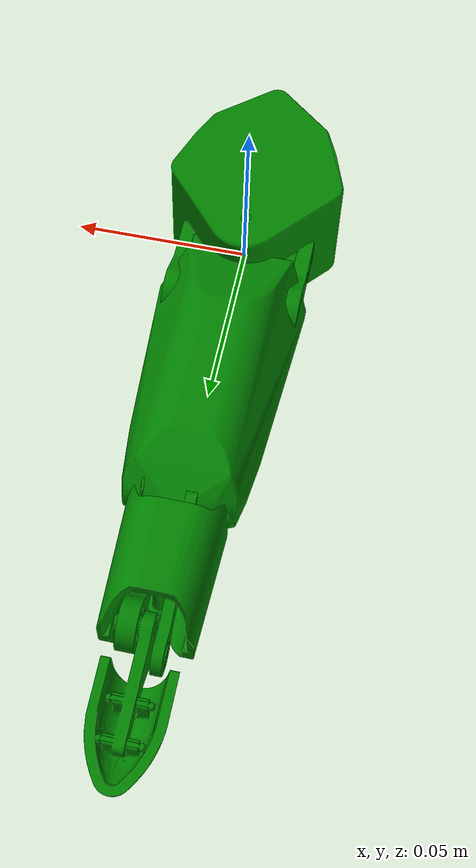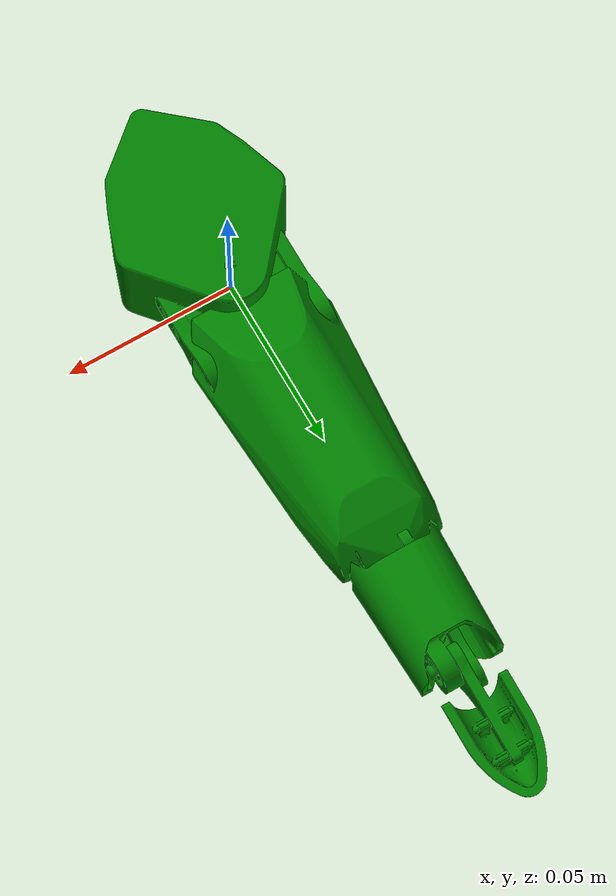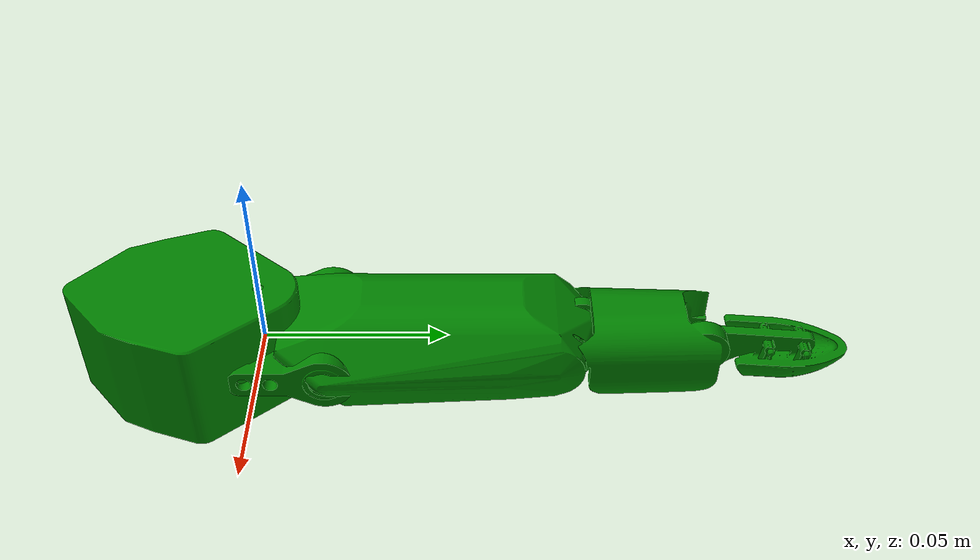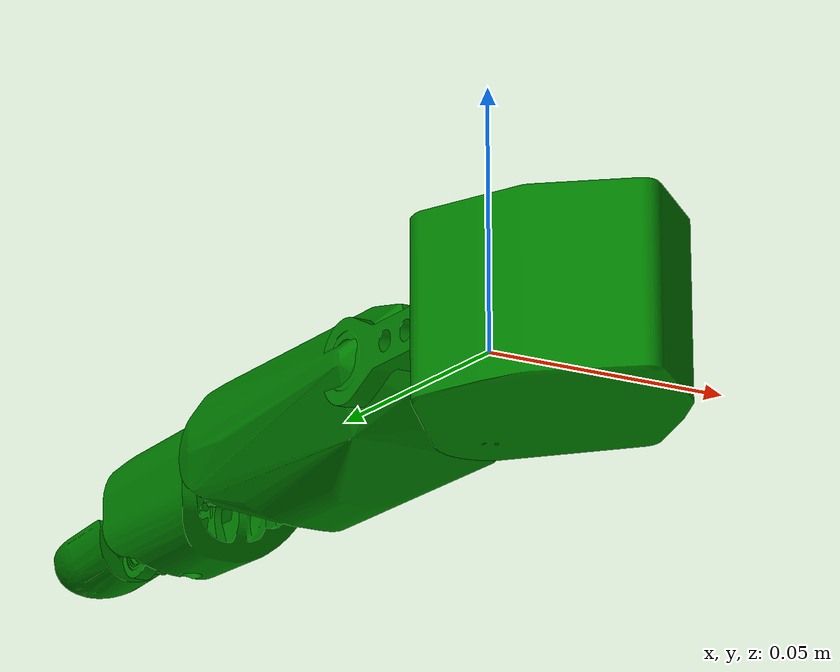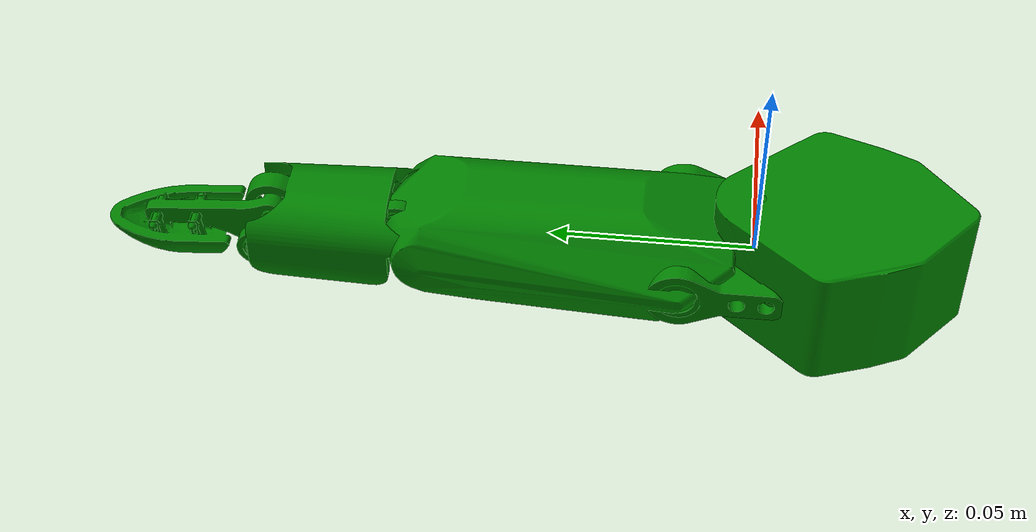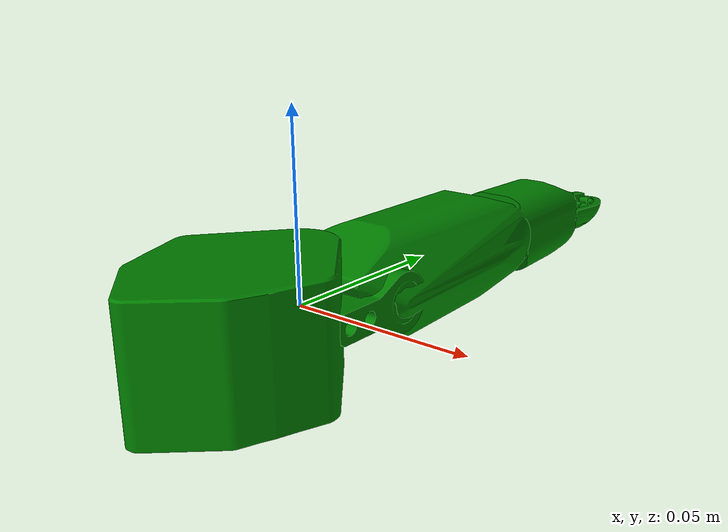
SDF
<?xml version="1.0"?>
<sdf version="1.9">
  <model name="finger">

  <!-- Generated by blender_export_sdf.py from /home/michael-jenz/rds_ws/src/robotic-finger/blender_files/rds_finger2_4bar.blend -->
  <!-- Four-bar linkage: proximal_phalanx + middle_phalanx1/2 + distal_phalanx -->
  <!-- Loop-closing joint: dip_flex2 (middle_phalanx2 → distal_phalanx) -->

    <drake:collision_filter_group name="finger_links">
      <drake:member>base_link</drake:member>
      <drake:member>mcp_link</drake:member>
      <drake:member>proximal_phalanx</drake:member>
      <drake:member>middle_phalanx1</drake:member>
      <drake:member>middle_phalanx2</drake:member>
      <drake:member>distal_phalanx</drake:member>
      <drake:ignored_collision_filter_group>finger_links</drake:ignored_collision_filter_group>
    </drake:collision_filter_group>
    <!-- ═══════════════ LINKS ═══════════════ -->

    <!-- Finger base -->
    <link name="base_link">
      <pose>0.0 0.0 0.0 0 0 0</pose>
      <visual name="visual">
        <geometry>
          <mesh>
            <uri>package://finger_description/meshes/sdf/visual/base_link.obj</uri>
          </mesh>
        </geometry>
          <material>
            <ambient>0.0 0.5 0.0 1.0</ambient>
            <diffuse>0.0 0.5 0.0 1.0</diffuse>
            <specular>0.1 0.1 0.1 1.0</specular>
            <emissive>0.0 0.0 0.0 1.0</emissive>
          </material>
      </visual>
      <collision name="collision">
        <geometry>
          <mesh>
            <uri>package://finger_description/meshes/sdf/collision/col_base_link.obj</uri>
          </mesh>
        </geometry>
      </collision>
      <inertial>
        <pose>0 0 0 0 0 0</pose>
        <mass>0.07682151183429052</mass>
        <inertia><ixx>3.15903e-05</ixx><ixy>0</ixy><ixz>0</ixz><iyy>1.25823e-05</iyy><iyz>0</iyz><izz>3.14006e-05</izz></inertia>
      </inertial>
    </link>

    <!-- Space between MCP splay and flexion -->
    <link name="mcp_link">
      <pose>0.0 0.0 0.0 0 0 0</pose>
      <visual name="visual">
        <geometry>
          <mesh>
            <uri>package://finger_description/meshes/sdf/visual/mcp_link.obj</uri>
          </mesh>
        </geometry>
        <material>
          <ambient>0.0 0.5 0.0 1.0</ambient>
          <diffuse>0.0 0.5 0.0 1.0</diffuse>
          <specular>0.1 0.1 0.1 1.0</specular>
          <emissive>0.0 0.0 0.0 1.0</emissive>
        </material>
      </visual>
      <collision name="collision">
        <geometry>
          <mesh>
            <uri>package://finger_description/meshes/sdf/collision/col_mcp_link.obj</uri>
          </mesh>
        </geometry>
      </collision>
      <inertial>
        <pose>0 0 0 0 0 0</pose>
        <mass>0.034078212457262946</mass>
        <inertia><ixx>2.81266e-06</ixx><ixy>0</ixy><ixz>0</ixz><iyy>2.34751e-06</iyy><iyz>0</iyz><izz>4.27778e-06</izz></inertia>
      </inertial>
    </link>

    <!-- Proximal phalanx -->
    <link name="proximal_phalanx">
      <pose>0.0 0.0178 -0.0 0 0 0</pose>
      <visual name="visual">
        <geometry>
          <mesh>
            <uri>package://finger_description/meshes/sdf/visual/proximal_phalanx.obj</uri>
          </mesh>
        </geometry>
        <material>
          <ambient>0.0 0.5 0.0 1.0</ambient>
          <diffuse>0.0 0.5 0.0 1.0</diffuse>
          <specular>0.1 0.1 0.1 1.0</specular>
          <emissive>0.0 0.0 0.0 1.0</emissive>
        </material>
      </visual>
      <collision name="collision">
        <geometry>
          <mesh>
            <uri>package://finger_description/meshes/sdf/collision/col_proximal_phalanx.obj</uri>
          </mesh>
        </geometry>
      </collision>
      <inertial>
        <pose>0 0 0 0 0 0</pose>
        <mass>0.09752369294333202</mass>
        <inertia><ixx>0.00013727</ixx><ixy>0</ixy><ixz>0</ixz><iyy>7.96386e-06</iyy><iyz>0</iyz><izz>0.000139409</izz></inertia>
      </inertial>
    </link>

    <!-- Middle phalanx 1 (four-bar coupler, dorsal) -->
    <link name="middle_phalanx1">
      <pose>0.0 0.079 -0.0 0 0 0</pose>
      <visual name="visual">
        <geometry>
          <mesh>
            <uri>package://finger_description/meshes/sdf/visual/middle_phalanx1.obj</uri>
          </mesh>
        </geometry>
        <material>
            <ambient>0.0 0.5 0.0 1.0</ambient>
            <diffuse>0.0 0.5 0.0 1.0</diffuse>
            <specular>0.1 0.1 0.1 1.0</specular>
            <emissive>0.0 0.0 0.0 1.0</emissive>
          </material>
      </visual>
      <collision name="collision">
        <geometry>
          <mesh>
            <uri>package://finger_description/meshes/sdf/collision/col_middle_phalanx1.obj</uri>
          </mesh>
        </geometry>
      </collision>
      <inertial>
        <pose>0 0 0 0 0 0</pose>
        <mass>0.03938588747815305</mass>
        <inertia><ixx>0.00020152</ixx><ixy>0</ixy><ixz>0</ixz><iyy>2.39146e-06</iyy><iyz>0</iyz><izz>0.000201822</izz></inertia>
      </inertial>
    </link>

    <!-- Middle phalanx 2 (four-bar coupler, volar) -->
    <link name="middle_phalanx2">
      <pose>-0.0026 0.0869 0.004 0 0 0</pose>
      <visual name="visual">
        <geometry>
          <mesh>
            <uri>package://finger_description/meshes/sdf/visual/middle_phalanx2.obj</uri>
          </mesh>
        </geometry>
        <material>
            <ambient>0.0 0.5 0.0 1.0</ambient>
            <diffuse>0.0 0.5 0.0 1.0</diffuse>
            <specular>0.1 0.1 0.1 1.0</specular>
            <emissive>0.0 0.0 0.0 1.0</emissive>
          </material>
      </visual>
      <collision name="collision">
        <geometry>
          <mesh>
            <uri>package://finger_description/meshes/sdf/collision/col_middle_phalanx2.obj</uri>
          </mesh>
        </geometry>
      </collision>
      <inertial>
        <pose>0 0 0 0 0 0</pose>
        <mass>0.003244949927837967</mass>
        <inertia><ixx>1.81601e-05</ixx><ixy>0</ixy><ixz>0</ixz><iyy>7.56023e-08</iyy><iyz>0</iyz><izz>1.8127e-05</izz></inertia>
      </inertial>
    </link>

    <!-- Distal phalanx -->
    <link name="distal_phalanx">
      <pose>0.0036 0.1196 0.0 0 0 0</pose>
      <visual name="visual">
        <geometry>
          <mesh>
            <uri>package://finger_description/meshes/sdf/visual/distal_phalanx.obj</uri>
          </mesh>
        </geometry>
        <material>
            <ambient>0.0 0.5 0.0 1.0</ambient>
            <diffuse>0.0 0.5 0.0 1.0</diffuse>
            <specular>0.1 0.1 0.1 1.0</specular>
            <emissive>0.0 0.0 0.0 1.0</emissive>
          </material>
      </visual>
      <collision name="collision">
        <geometry>
          <mesh>
            <uri>package://finger_description/meshes/sdf/collision/col_distal_phalanx.obj</uri>
          </mesh>
        </geometry>
      </collision>
      <inertial>
        <pose>0 0 0 0 0 0</pose>
        <mass>0.020274276496870466</mass>
        <inertia><ixx>0.000198507</ixx><ixy>0</ixy><ixz>0</ixz><iyy>4.96753e-07</iyy><iyz>0</iyz><izz>0.000198449</izz></inertia>
      </inertial>
    </link>

    <!-- ═══════════════ JOINTS ══════════════ -->

    <!-- Mcp Splay -->
    <joint name="mcp_splay" type="revolute">
      <pose relative_to="base_link">0.0 0.0 0.0 0 0 0</pose>
      <parent>base_link</parent>
      <child>mcp_link</child>
      <axis>
        <xyz expressed_in="__model__">0.0 0.0 1.0</xyz>
        <limit>
          <lower>-0.55</lower>
          <upper>0.55</upper>
          <effort>10000.0</effort>
          <velocity>10000.0</velocity>
        </limit>
        <dynamics>
          <damping>0.01</damping>
          <friction>0.0</friction>
        </dynamics>
      </axis>
    </joint>

    <!-- Mcp Flexion -->
    <joint name="mcp_flexion" type="revolute">
      <pose relative_to="mcp_link">0.0 0.0178 -0.0 0 0 0</pose>
      <parent>mcp_link</parent>
      <child>proximal_phalanx</child>
      <axis>
        <xyz expressed_in="__model__">-1.0 0.0 0.0</xyz>
        <limit>
          <lower>0.0</lower>
          <upper>1.57</upper>
          <effort>10000.0</effort>
          <velocity>10000.0</velocity>
        </limit>
        <dynamics>
          <damping>0.01</damping>
          <friction>0.0</friction>
        </dynamics>
      </axis>
    </joint>

    <!-- Pip Flex1 -->
    <joint name="pip_flex1" type="revolute">
      <pose relative_to="proximal_phalanx">0.0 0.0612 0.0 0 0 0</pose>
      <parent>proximal_phalanx</parent>
      <child>middle_phalanx1</child>
      <axis>
        <xyz expressed_in="__model__">-1.0 0.0 0.0</xyz>
        <limit>
          <lower>0.0</lower>
          <upper>1.57</upper>
          <effort>10000.0</effort>
          <velocity>10000.0</velocity>
        </limit>
        <dynamics>
          <damping>0.01</damping>
          <friction>0.0</friction>
        </dynamics>
      </axis>
    </joint>

    <!-- Pip Flex2 -->
    <joint name="pip_flex2" type="revolute">
      <pose relative_to="proximal_phalanx">-0.0026 0.0691 0.004 0 0 0</pose>
      <parent>proximal_phalanx</parent>
      <child>middle_phalanx2</child>
      <axis>
        <xyz expressed_in="__model__">-1.0 0.0 0.0</xyz>
        <limit>
          <lower>0.0</lower>
          <upper>1.57</upper>
          <effort>0.0</effort>
          <velocity>10000.0</velocity>
        </limit>
        <dynamics>
          <damping>0.01</damping>
          <friction>0.0</friction>
        </dynamics>
      </axis>
    </joint>

    <!-- Dip Flex1 -->
    <joint name="dip_flex1" type="revolute">
      <pose relative_to="middle_phalanx1">0.0036 0.0406 0.0 0 0 0</pose>
      <parent>middle_phalanx1</parent>
      <child>distal_phalanx</child>
      <axis>
        <xyz expressed_in="__model__">-1.0 0.0 0.0</xyz>
        <limit>
          <lower>0.0</lower>
          <upper>1.57</upper>
          <effort>0.0</effort>
          <velocity>10000.0</velocity>
        </limit>
        <dynamics>
          <damping>0.01</damping>
          <friction>0.0</friction>
        </dynamics>
      </axis>
    </joint>

  </model>
</sdf>
